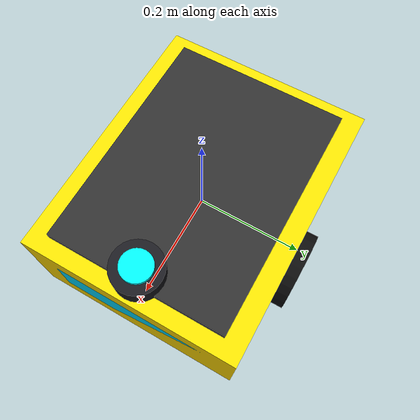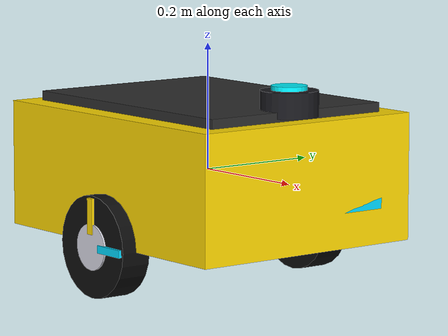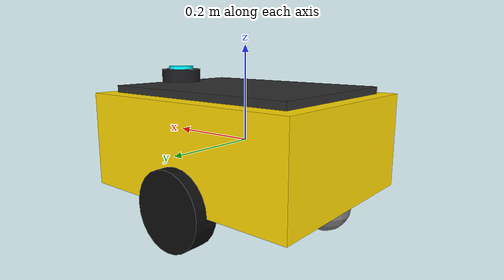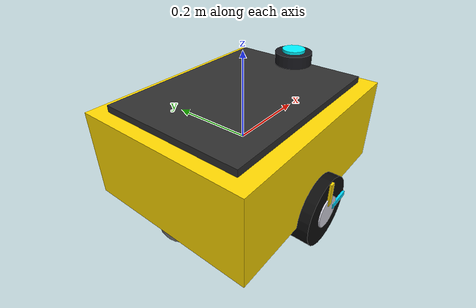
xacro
<?xml version="1.0"?>
<robot name="warehouse_robot" xmlns:xacro="http://www.ros.org/wiki/xacro">

  <!-- ================= PARAMETERS ================= -->
  <xacro:property name="base_length" value="0.5"/>
  <xacro:property name="base_width" value="0.4"/>
  <xacro:property name="base_height" value="0.2"/>

  <xacro:property name="wheel_radius" value="0.08"/>
  <xacro:property name="wheel_width" value="0.05"/>
  <xacro:property name="wheel_separation" value="0.40"/>

  <link name="base_link">
    <visual>
      <geometry>
        <box size="${base_length} ${base_width} ${base_height}"/>
      </geometry>
      <material name="yellow">
        <color rgba="1.0 0.85 0.0 1.0"/>
      </material>
    </visual>
    <visual>
      <origin xyz="0 0 ${base_height/2 + 0.008}" rpy="0 0 0"/>
      <geometry>
        <box size="${base_length*0.88} ${base_width*0.82} 0.015"/>
      </geometry>
      <material name="top_panel_dark">
        <color rgba="0.18 0.18 0.18 1.0"/>
      </material>
    </visual>
    <visual>
      <origin xyz="${base_length/2 - 0.006} 0 0" rpy="0 0 0"/>
      <geometry>
        <box size="0.012 ${base_width*0.72} ${base_height*0.45}"/>
      </geometry>
      <material name="front_accent_cyan">
        <color rgba="0.0 0.85 1.0 1.0"/>
      </material>
    </visual>

    <collision>
      <geometry>
        <box size="${base_length} ${base_width} ${base_height}"/>
      </geometry>
    </collision>

    <inertial>
      <mass value="8.0"/>
      <inertia ixx="0.2" ixy="0" ixz="0"
               iyy="0.2" iyz="0"
               izz="0.2"/>
    </inertial>
  </link>

  <xacro:macro name="drive_wheel" params="side y_sign">
    <link name="${side}_wheel">
      <!-- Tyre -->
      <visual>
        <geometry>
          <cylinder radius="${wheel_radius}" length="${wheel_width}"/>
        </geometry>
        <material name="tyre_black">
          <color rgba="0.05 0.05 0.05 1"/>
        </material>
      </visual>
      <!-- Hub (bright disk) so we can see the wheel rotate -->
      <visual>
        <origin xyz="0 0 ${wheel_width/2 + 0.001}" rpy="0 0 0"/>
        <geometry>
          <cylinder radius="${wheel_radius*0.45}" length="0.004"/>
        </geometry>
        <material name="wheel_hub">
          <color rgba="0.85 0.85 0.90 1"/>
        </material>
      </visual>
      <!-- Spoke 1: asymmetric stripe from hub to rim. Because the cylinder's
           local Z is the axle direction, a box offset along local X rotates
           visibly around the axle as the joint spins. -->
      <visual>
        <origin xyz="${wheel_radius*0.6} 0 ${wheel_width/2 + 0.002}" rpy="0 0 0"/>
        <geometry>
          <box size="${wheel_radius*0.7} 0.012 0.006"/>
        </geometry>
        <material name="spoke_cyan">
          <color rgba="0.0 0.85 1.0 1.0"/>
        </material>
      </visual>
      <!-- Spoke 2: perpendicular, different colour -->
      <visual>
        <origin xyz="0 ${wheel_radius*0.6} ${wheel_width/2 + 0.002}" rpy="0 0 0"/>
        <geometry>
          <box size="0.012 ${wheel_radius*0.7} 0.006"/>
        </geometry>
        <material name="spoke_yellow">
          <color rgba="1.0 0.85 0.0 1.0"/>
        </material>
      </visual>

      <collision>
        <geometry>
          <cylinder radius="${wheel_radius}" length="${wheel_width}"/>
        </geometry>
      </collision>

      <inertial>
        <mass value="1.0"/>
        <inertia ixx="0.01" ixy="0" ixz="0"
                 iyy="0.01" iyz="0"
                 izz="0.01"/>
      </inertial>
    </link>

    <joint name="${side}_wheel_joint" type="continuous">
      <parent link="base_link"/>
      <child link="${side}_wheel"/>
      <origin xyz="0 ${y_sign*wheel_separation/2} -${base_height/2}" rpy="1.5707 0 0"/>
      <!-- Axle axis (child Z == parent Y after the rpy rotation above) -->
      <axis xyz="0 0 1"/>
      <dynamics damping="0.01" friction="0.0"/>
    </joint>

    <!-- Good rolling friction for wheels -->
    <gazebo reference="${side}_wheel">
      <mu1>1.0</mu1>
      <mu2>1.0</mu2>
      <kp>1000000.0</kp>
      <kd>100.0</kd>
    </gazebo>
  </xacro:macro>

  <xacro:drive_wheel side="left"  y_sign="1"/>
  <xacro:drive_wheel side="right" y_sign="-1"/>

  <!-- ================= CASTER WHEEL ================= -->
  <link name="caster_wheel">
    <visual>
      <geometry>
        <sphere radius="0.05"/>
      </geometry>
      <material name="gray">
        <color rgba="0.5 0.5 0.5 1"/>
      </material>
    </visual>

    <collision>
      <geometry>
        <sphere radius="0.05"/>
      </geometry>
      <surface>
        <friction>
          <ode>
            <mu>0.0</mu>
            <mu2>0.0</mu2>
          </ode>
        </friction>
      </surface>
    </collision>

    <inertial>
      <mass value="0.2"/>
      <inertia ixx="0.0005" ixy="0" ixz="0"
               iyy="0.0005" iyz="0"
               izz="0.0005"/>
    </inertial>
  </link>

  <joint name="caster_joint" type="fixed">
    <parent link="base_link"/>
    <child link="caster_wheel"/>
    <origin xyz="-0.2 0 -${base_height/2}"/>
  </joint>

  <!-- Low-friction caster surface for Gazebo -->
  <gazebo reference="caster_wheel">
    <mu1>0.0</mu1>
    <mu2>0.0</mu2>
  </gazebo>

  <!-- ================= LIDAR ================= -->
  <link name="laser_frame">
    <visual>
      <geometry>
        <cylinder radius="0.045" length="0.04"/>
      </geometry>
      <material name="lidar_body">
        <color rgba="0.10 0.10 0.12 1.0"/>
      </material>
    </visual>
    <visual>
      <origin xyz="0 0 0.022" rpy="0 0 0"/>
      <geometry>
        <cylinder radius="0.028" length="0.010"/>
      </geometry>
      <material name="lidar_glow">
        <color rgba="0.0 0.95 1.0 1.0"/>
      </material>
    </visual>

    <collision>
      <geometry>
        <cylinder radius="0.045" length="0.04"/>
      </geometry>
    </collision>

    <inertial>
      <mass value="0.1"/>
      <inertia ixx="0.0001" ixy="0" ixz="0"
               iyy="0.0001" iyz="0"
               izz="0.0001"/>
    </inertial>
  </link>

  <joint name="laser_joint" type="fixed">
    <parent link="base_link"/>
    <child link="laser_frame"/>
    <origin xyz="0.2 0 ${base_height/2 + 0.025}"/>
  </joint>

  <gazebo>
    <plugin filename="gz-sim-diff-drive-system"
            name="gz::sim::systems::DiffDrive">
      <left_joint>left_wheel_joint</left_joint>
      <right_joint>right_wheel_joint</right_joint>

      <wheel_separation>${wheel_separation}</wheel_separation>
      <wheel_radius>${wheel_radius}</wheel_radius>

      <odom_publish_frequency>50</odom_publish_frequency>
      <topic>/cmd_vel</topic>
      <odom_topic>/odom</odom_topic>
      <tf_topic>/tf</tf_topic>
      <frame_id>odom</frame_id>
      <child_frame_id>base_link</child_frame_id>
      <!-- Sane accel/velocity limits so the bot doesn't rocket off -->
      <max_linear_acceleration>2.0</max_linear_acceleration>
      <max_angular_acceleration>4.0</max_angular_acceleration>
    </plugin>

    <!-- Publishes simulation time on gz topic /clock -->
    <plugin filename="gz-sim-joint-state-publisher-system"
            name="gz::sim::systems::JointStatePublisher">
      <topic>/joint_states</topic>
      <joint_name>left_wheel_joint</joint_name>
      <joint_name>right_wheel_joint</joint_name>
    </plugin>
  </gazebo>

  <!-- ================= GAZEBO: LIDAR ================= -->
  <gazebo reference="laser_frame">
    <sensor name="lidar" type="gpu_lidar">
      <update_rate>10</update_rate>
      <topic>/scan</topic>
      <gz_frame_id>laser_frame</gz_frame_id>

      <lidar>
        <scan>
          <horizontal>
            <samples>360</samples>
            <resolution>1</resolution>
            <min_angle>-3.1416</min_angle>
            <max_angle>3.1416</max_angle>
          </horizontal>
        </scan>

        <range>
          <min>0.1</min>
          <max>10.0</max>
        </range>
      </lidar>

      <always_on>1</always_on>
      <visualize>false</visualize>
    </sensor>
  </gazebo>

</robot>
